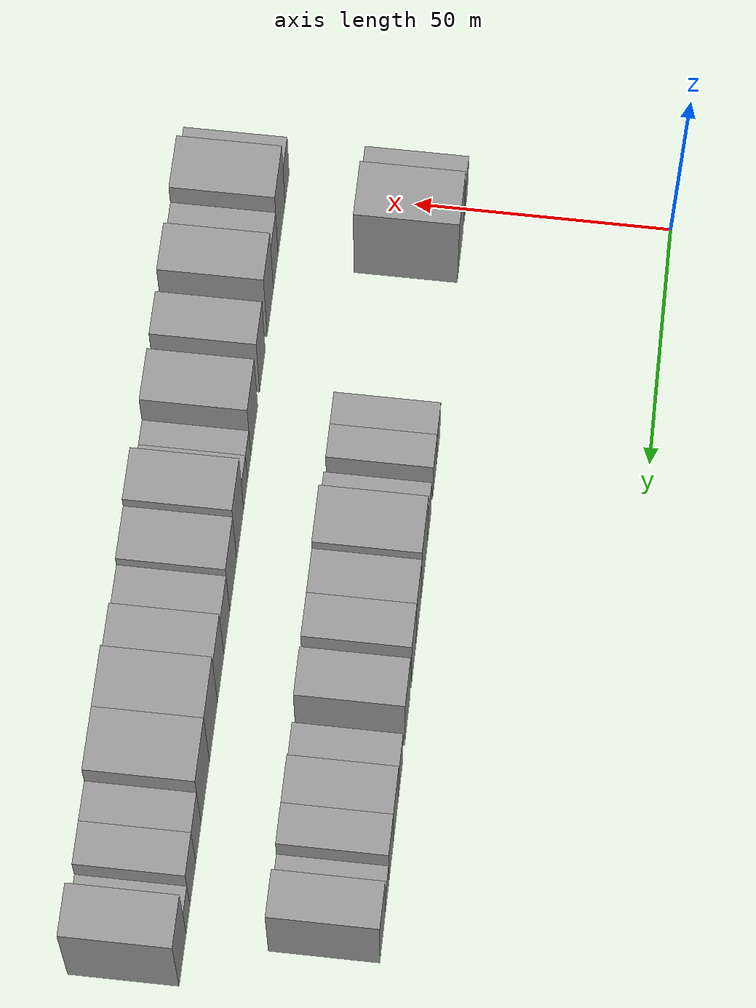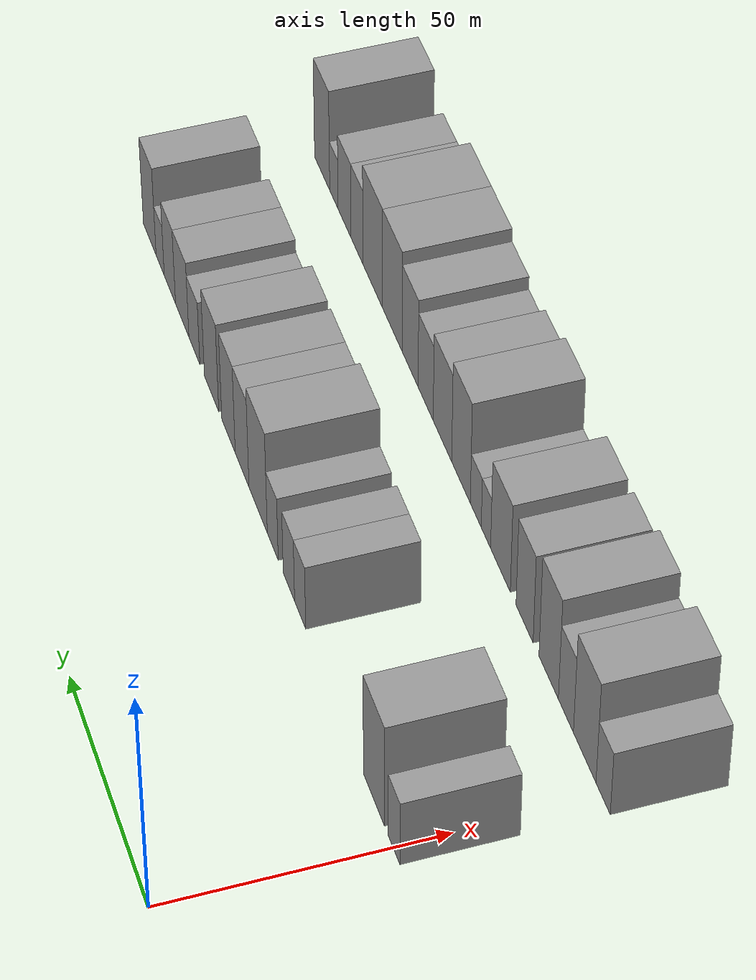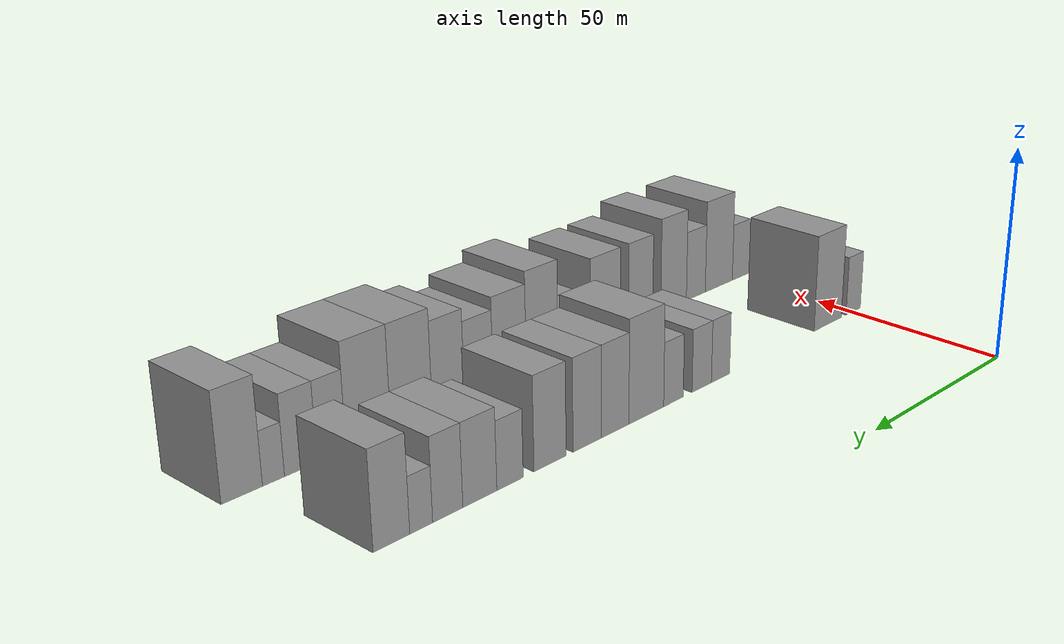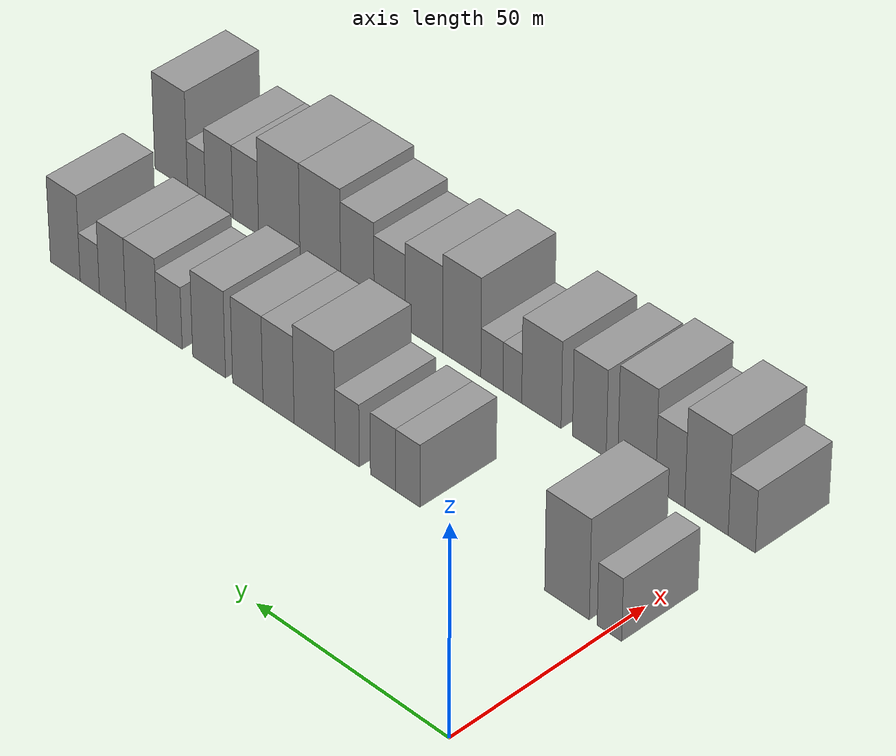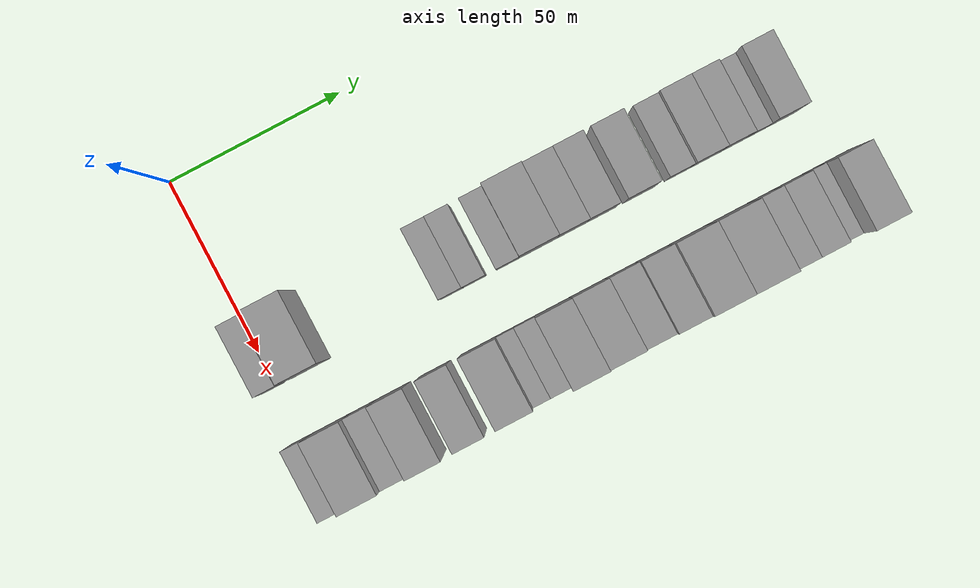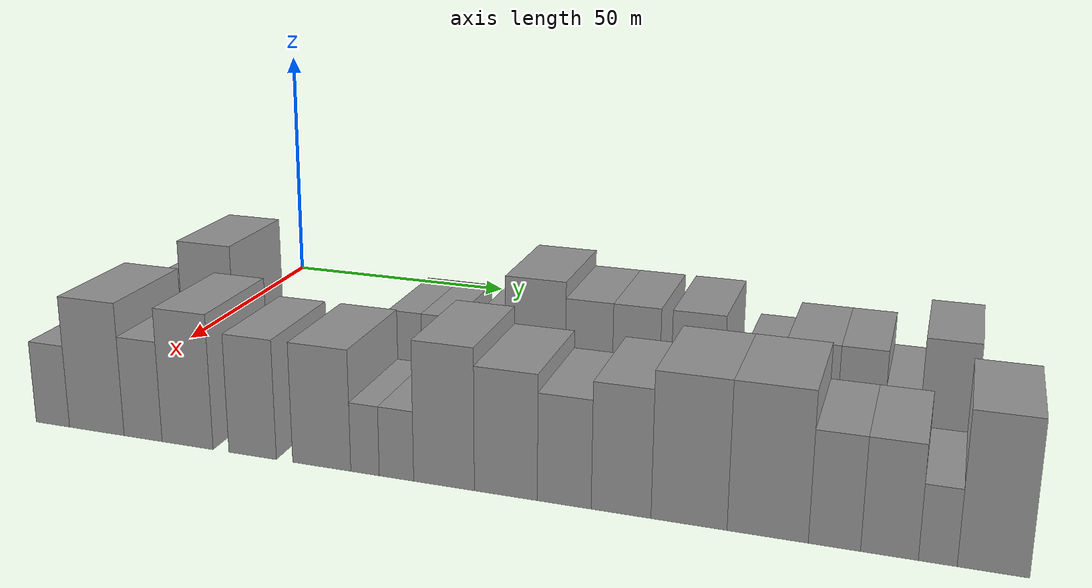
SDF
<sdf version="1.6">
 <world name="default">
  <model name="building_33">
   <static>1</static>
   <pose>50.0000 -0.4919 0 0.000000 0.000000 0.000000</pose>
   <link name="link">
    <pose>0 0 7.50 0 0 0</pose>
    <collision name="collision"><geometry><box><size>20.0000 6.1572 15.0000</size></box></geometry></collision>
    <visual name="visual">
     <cast_shadows>0</cast_shadows>
     <geometry><box><size>20.0000 6.1572 15.0000</size></box></geometry>
     <material>
      <script>
       <uri>model://grey_wall/materials/scripts</uri>
       <uri>model://grey_wall/materials/textures</uri>
       <name>vrc/grey_wall</name>
      </script>
     </material>
    </visual>
   </link>
  </model>
  <model name="building_34">
   <static>1</static>
   <pose>50.0000 10.2601 0 0.000000 0.000000 0.000000</pose>
   <link name="link">
    <pose>0 0 12.00 0 0 0</pose>
    <collision name="collision"><geometry><box><size>20.0000 11.3468 24.0000</size></box></geometry></collision>
    <visual name="visual">
     <cast_shadows>0</cast_shadows>
     <geometry><box><size>20.0000 11.3468 24.0000</size></box></geometry>
     <material>
      <script>
       <uri>model://grey_wall/materials/scripts</uri>
       <uri>model://grey_wall/materials/textures</uri>
       <name>vrc/grey_wall</name>
      </script>
     </material>
    </visual>
   </link>
  </model>
  <model name="building_35">
   <static>1</static>
   <pose>50.0000 51.6948 0 0.000000 0.000000 0.000000</pose>
   <link name="link">
    <pose>0 0 7.50 0 0 0</pose>
    <collision name="collision"><geometry><box><size>20.0000 6.5075 15.0000</size></box></geometry></collision>
    <visual name="visual">
     <cast_shadows>0</cast_shadows>
     <geometry><box><size>20.0000 6.5075 15.0000</size></box></geometry>
     <material>
      <script>
       <uri>model://grey_wall/materials/scripts</uri>
       <uri>model://grey_wall/materials/textures</uri>
       <name>vrc/grey_wall</name>
      </script>
     </material>
    </visual>
   </link>
  </model>
  <model name="building_36">
   <static>1</static>
   <pose>50.0000 58.3173 0 0.000000 0.000000 0.000000</pose>
   <link name="link">
    <pose>0 0 7.50 0 0 0</pose>
    <collision name="collision"><geometry><box><size>20.0000 6.7374 15.0000</size></box></geometry></collision>
    <visual name="visual">
     <cast_shadows>0</cast_shadows>
     <geometry><box><size>20.0000 6.7374 15.0000</size></box></geometry>
     <material>
      <script>
       <uri>model://grey_wall/materials/scripts</uri>
       <uri>model://grey_wall/materials/textures</uri>
       <name>vrc/grey_wall</name>
      </script>
     </material>
    </visual>
   </link>
  </model>
  <model name="building_37">
   <static>1</static>
   <pose>50.0000 67.9673 0 0.000000 0.000000 0.000000</pose>
   <link name="link">
    <pose>0 0 7.50 0 0 0</pose>
    <collision name="collision"><geometry><box><size>20.0000 6.5625 15.0000</size></box></geometry></collision>
    <visual name="visual">
     <cast_shadows>0</cast_shadows>
     <geometry><box><size>20.0000 6.5625 15.0000</size></box></geometry>
     <material>
      <script>
       <uri>model://grey_wall/materials/scripts</uri>
       <uri>model://grey_wall/materials/textures</uri>
       <name>vrc/grey_wall</name>
      </script>
     </material>
    </visual>
   </link>
  </model>
  <model name="building_38">
   <static>1</static>
   <pose>50.0000 76.8623 0 0.000000 0.000000 0.000000</pose>
   <link name="link">
    <pose>0 0 12.00 0 0 0</pose>
    <collision name="collision"><geometry><box><size>20.0000 11.2276 24.0000</size></box></geometry></collision>
    <visual name="visual">
     <cast_shadows>0</cast_shadows>
     <geometry><box><size>20.0000 11.2276 24.0000</size></box></geometry>
     <material>
      <script>
       <uri>model://grey_wall/materials/scripts</uri>
       <uri>model://grey_wall/materials/textures</uri>
       <name>vrc/grey_wall</name>
      </script>
     </material>
    </visual>
   </link>
  </model>
  <model name="building_39">
   <static>1</static>
   <pose>50.0000 86.7764 0 0.000000 0.000000 0.000000</pose>
   <link name="link">
    <pose>0 0 10.50 0 0 0</pose>
    <collision name="collision"><geometry><box><size>20.0000 8.6006 21.0000</size></box></geometry></collision>
    <visual name="visual">
     <cast_shadows>0</cast_shadows>
     <geometry><box><size>20.0000 8.6006 21.0000</size></box></geometry>
     <material>
      <script>
       <uri>model://grey_wall/materials/scripts</uri>
       <uri>model://grey_wall/materials/textures</uri>
       <name>vrc/grey_wall</name>
      </script>
     </material>
    </visual>
   </link>
  </model>
  <model name="building_40">
   <static>1</static>
   <pose>50.0000 95.3195 0 0.000000 0.000000 0.000000</pose>
   <link name="link">
    <pose>0 0 10.50 0 0 0</pose>
    <collision name="collision"><geometry><box><size>20.0000 8.4856 21.0000</size></box></geometry></collision>
    <visual name="visual">
     <cast_shadows>0</cast_shadows>
     <geometry><box><size>20.0000 8.4856 21.0000</size></box></geometry>
     <material>
      <script>
       <uri>model://grey_wall/materials/scripts</uri>
       <uri>model://grey_wall/materials/textures</uri>
       <name>vrc/grey_wall</name>
      </script>
     </material>
    </visual>
   </link>
  </model>
  <model name="building_41">
   <static>1</static>
   <pose>50.0000 106.1843 0 0.000000 0.000000 0.000000</pose>
   <link name="link">
    <pose>0 0 10.50 0 0 0</pose>
    <collision name="collision"><geometry><box><size>20.0000 9.2440 21.0000</size></box></geometry></collision>
    <visual name="visual">
     <cast_shadows>0</cast_shadows>
     <geometry><box><size>20.0000 9.2440 21.0000</size></box></geometry>
     <material>
      <script>
       <uri>model://grey_wall/materials/scripts</uri>
       <uri>model://grey_wall/materials/textures</uri>
       <name>vrc/grey_wall</name>
      </script>
     </material>
    </visual>
   </link>
  </model>
  <model name="building_42">
   <static>1</static>
   <pose>50.0000 117.4076 0 0.000000 0.000000 0.000000</pose>
   <link name="link">
    <pose>0 0 7.50 0 0 0</pose>
    <collision name="collision"><geometry><box><size>20.0000 7.2025 15.0000</size></box></geometry></collision>
    <visual name="visual">
     <cast_shadows>0</cast_shadows>
     <geometry><box><size>20.0000 7.2025 15.0000</size></box></geometry>
     <material>
      <script>
       <uri>model://grey_wall/materials/scripts</uri>
       <uri>model://grey_wall/materials/textures</uri>
       <name>vrc/grey_wall</name>
      </script>
     </material>
    </visual>
   </link>
  </model>
  <model name="building_43">
   <static>1</static>
   <pose>50.0000 125.4873 0 0.000000 0.000000 0.000000</pose>
   <link name="link">
    <pose>0 0 9.00 0 0 0</pose>
    <collision name="collision"><geometry><box><size>20.0000 8.9569 18.0000</size></box></geometry></collision>
    <visual name="visual">
     <cast_shadows>0</cast_shadows>
     <geometry><box><size>20.0000 8.9569 18.0000</size></box></geometry>
     <material>
      <script>
       <uri>model://grey_wall/materials/scripts</uri>
       <uri>model://grey_wall/materials/textures</uri>
       <name>vrc/grey_wall</name>
      </script>
     </material>
    </visual>
   </link>
  </model>
  <model name="building_44">
   <static>1</static>
   <pose>50.0000 133.7983 0 0.000000 0.000000 0.000000</pose>
   <link name="link">
    <pose>0 0 9.00 0 0 0</pose>
    <collision name="collision"><geometry><box><size>20.0000 7.6651 18.0000</size></box></geometry></collision>
    <visual name="visual">
     <cast_shadows>0</cast_shadows>
     <geometry><box><size>20.0000 7.6651 18.0000</size></box></geometry>
     <material>
      <script>
       <uri>model://grey_wall/materials/scripts</uri>
       <uri>model://grey_wall/materials/textures</uri>
       <name>vrc/grey_wall</name>
      </script>
     </material>
    </visual>
   </link>
  </model>
  <model name="building_45">
   <static>1</static>
   <pose>50.0000 140.4432 0 0.000000 0.000000 0.000000</pose>
   <link name="link">
    <pose>0 0 6.00 0 0 0</pose>
    <collision name="collision"><geometry><box><size>20.0000 5.6247 12.0000</size></box></geometry></collision>
    <visual name="visual">
     <cast_shadows>0</cast_shadows>
     <geometry><box><size>20.0000 5.6247 12.0000</size></box></geometry>
     <material>
      <script>
       <uri>model://grey_wall/materials/scripts</uri>
       <uri>model://grey_wall/materials/textures</uri>
       <name>vrc/grey_wall</name>
      </script>
     </material>
    </visual>
   </link>
  </model>
  <model name="building_46">
   <static>1</static>
   <pose>50.0000 147.6350 0 0.000000 0.000000 0.000000</pose>
   <link name="link">
    <pose>0 0 10.50 0 0 0</pose>
    <collision name="collision"><geometry><box><size>20.0000 8.7589 21.0000</size></box></geometry></collision>
    <visual name="visual">
     <cast_shadows>0</cast_shadows>
     <geometry><box><size>20.0000 8.7589 21.0000</size></box></geometry>
     <material>
      <script>
       <uri>model://grey_wall/materials/scripts</uri>
       <uri>model://grey_wall/materials/textures</uri>
       <name>vrc/grey_wall</name>
      </script>
     </material>
    </visual>
   </link>
  </model>
  <model name="building_95">
   <static>1</static>
   <pose>85.0000 -0.4594 0 0.000000 0.000000 0.000000</pose>
   <link name="link">
    <pose>0 0 7.50 0 0 0</pose>
    <collision name="collision"><geometry><box><size>20.0000 6.8615 15.0000</size></box></geometry></collision>
    <visual name="visual">
     <cast_shadows>0</cast_shadows>
     <geometry><box><size>20.0000 6.8615 15.0000</size></box></geometry>
     <material>
      <script>
       <uri>model://grey_wall/materials/scripts</uri>
       <uri>model://grey_wall/materials/textures</uri>
       <name>vrc/grey_wall</name>
      </script>
     </material>
    </visual>
   </link>
  </model>
  <model name="building_96">
   <static>1</static>
   <pose>85.0000 8.4899 0 0.000000 0.000000 0.000000</pose>
   <link name="link">
    <pose>0 0 12.00 0 0 0</pose>
    <collision name="collision"><geometry><box><size>20.0000 11.0371 24.0000</size></box></geometry></collision>
    <visual name="visual">
     <cast_shadows>0</cast_shadows>
     <geometry><box><size>20.0000 11.0371 24.0000</size></box></geometry>
     <material>
      <script>
       <uri>model://grey_wall/materials/scripts</uri>
       <uri>model://grey_wall/materials/textures</uri>
       <name>vrc/grey_wall</name>
      </script>
     </material>
    </visual>
   </link>
  </model>
  <model name="building_97">
   <static>1</static>
   <pose>85.0000 17.7522 0 0.000000 0.000000 0.000000</pose>
   <link name="link">
    <pose>0 0 9.00 0 0 0</pose>
    <collision name="collision"><geometry><box><size>20.0000 7.4875 18.0000</size></box></geometry></collision>
    <visual name="visual">
     <cast_shadows>0</cast_shadows>
     <geometry><box><size>20.0000 7.4875 18.0000</size></box></geometry>
     <material>
      <script>
       <uri>model://grey_wall/materials/scripts</uri>
       <uri>model://grey_wall/materials/textures</uri>
       <name>vrc/grey_wall</name>
      </script>
     </material>
    </visual>
   </link>
  </model>
  <model name="building_98">
   <static>1</static>
   <pose>85.0000 26.4121 0 0.000000 0.000000 0.000000</pose>
   <link name="link">
    <pose>0 0 12.00 0 0 0</pose>
    <collision name="collision"><geometry><box><size>20.0000 9.8324 24.0000</size></box></geometry></collision>
    <visual name="visual">
     <cast_shadows>0</cast_shadows>
     <geometry><box><size>20.0000 9.8324 24.0000</size></box></geometry>
     <material>
      <script>
       <uri>model://grey_wall/materials/scripts</uri>
       <uri>model://grey_wall/materials/textures</uri>
       <name>vrc/grey_wall</name>
      </script>
     </material>
    </visual>
   </link>
  </model>
  <model name="building_99">
   <static>1</static>
   <pose>85.0000 38.7563 0 0.000000 0.000000 0.000000</pose>
   <link name="link">
    <pose>0 0 10.50 0 0 0</pose>
    <collision name="collision"><geometry><box><size>20.0000 8.8560 21.0000</size></box></geometry></collision>
    <visual name="visual">
     <cast_shadows>0</cast_shadows>
     <geometry><box><size>20.0000 8.8560 21.0000</size></box></geometry>
     <material>
      <script>
       <uri>model://grey_wall/materials/scripts</uri>
       <uri>model://grey_wall/materials/textures</uri>
       <name>vrc/grey_wall</name>
      </script>
     </material>
    </visual>
   </link>
  </model>
  <model name="building_100">
   <static>1</static>
   <pose>85.0000 51.4210 0 0.000000 0.000000 0.000000</pose>
   <link name="link">
    <pose>0 0 10.50 0 0 0</pose>
    <collision name="collision"><geometry><box><size>20.0000 10.4734 21.0000</size></box></geometry></collision>
    <visual name="visual">
     <cast_shadows>0</cast_shadows>
     <geometry><box><size>20.0000 10.4734 21.0000</size></box></geometry>
     <material>
      <script>
       <uri>model://grey_wall/materials/scripts</uri>
       <uri>model://grey_wall/materials/textures</uri>
       <name>vrc/grey_wall</name>
      </script>
     </material>
    </visual>
   </link>
  </model>
  <model name="building_101">
   <static>1</static>
   <pose>85.0000 59.1719 0 0.000000 0.000000 0.000000</pose>
   <link name="link">
    <pose>0 0 6.00 0 0 0</pose>
    <collision name="collision"><geometry><box><size>20.0000 5.0283 12.0000</size></box></geometry></collision>
    <visual name="visual">
     <cast_shadows>0</cast_shadows>
     <geometry><box><size>20.0000 5.0283 12.0000</size></box></geometry>
     <material>
      <script>
       <uri>model://grey_wall/materials/scripts</uri>
       <uri>model://grey_wall/materials/textures</uri>
       <name>vrc/grey_wall</name>
      </script>
     </material>
    </visual>
   </link>
  </model>
  <model name="building_102">
   <static>1</static>
   <pose>85.0000 64.6702 0 0.000000 0.000000 0.000000</pose>
   <link name="link">
    <pose>0 0 6.00 0 0 0</pose>
    <collision name="collision"><geometry><box><size>20.0000 5.9684 12.0000</size></box></geometry></collision>
    <visual name="visual">
     <cast_shadows>0</cast_shadows>
     <geometry><box><size>20.0000 5.9684 12.0000</size></box></geometry>
     <material>
      <script>
       <uri>model://grey_wall/materials/scripts</uri>
       <uri>model://grey_wall/materials/textures</uri>
       <name>vrc/grey_wall</name>
      </script>
     </material>
    </visual>
   </link>
  </model>
  <model name="building_103">
   <static>1</static>
   <pose>85.0000 72.8113 0 0.000000 0.000000 0.000000</pose>
   <link name="link">
    <pose>0 0 12.00 0 0 0</pose>
    <collision name="collision"><geometry><box><size>20.0000 10.3137 24.0000</size></box></geometry></collision>
    <visual name="visual">
     <cast_shadows>0</cast_shadows>
     <geometry><box><size>20.0000 10.3137 24.0000</size></box></geometry>
     <material>
      <script>
       <uri>model://grey_wall/materials/scripts</uri>
       <uri>model://grey_wall/materials/textures</uri>
       <name>vrc/grey_wall</name>
      </script>
     </material>
    </visual>
   </link>
  </model>
  <model name="building_104">
   <static>1</static>
   <pose>85.0000 83.1568 0 0.000000 0.000000 0.000000</pose>
   <link name="link">
    <pose>0 0 10.50 0 0 0</pose>
    <collision name="collision"><geometry><box><size>20.0000 10.3774 21.0000</size></box></geometry></collision>
    <visual name="visual">
     <cast_shadows>0</cast_shadows>
     <geometry><box><size>20.0000 10.3774 21.0000</size></box></geometry>
     <material>
      <script>
       <uri>model://grey_wall/materials/scripts</uri>
       <uri>model://grey_wall/materials/textures</uri>
       <name>vrc/grey_wall</name>
      </script>
     </material>
    </visual>
   </link>
  </model>
  <model name="building_105">
   <static>1</static>
   <pose>85.0000 92.6699 0 0.000000 0.000000 0.000000</pose>
   <link name="link">
    <pose>0 0 9.00 0 0 0</pose>
    <collision name="collision"><geometry><box><size>20.0000 8.6486 18.0000</size></box></geometry></collision>
    <visual name="visual">
     <cast_shadows>0</cast_shadows>
     <geometry><box><size>20.0000 8.6486 18.0000</size></box></geometry>
     <material>
      <script>
       <uri>model://grey_wall/materials/scripts</uri>
       <uri>model://grey_wall/materials/textures</uri>
       <name>vrc/grey_wall</name>
      </script>
     </material>
    </visual>
   </link>
  </model>
  <model name="building_106">
   <static>1</static>
   <pose>85.0000 101.6685 0 0.000000 0.000000 0.000000</pose>
   <link name="link">
    <pose>0 0 10.50 0 0 0</pose>
    <collision name="collision"><geometry><box><size>20.0000 9.3486 21.0000</size></box></geometry></collision>
    <visual name="visual">
     <cast_shadows>0</cast_shadows>
     <geometry><box><size>20.0000 9.3486 21.0000</size></box></geometry>
     <material>
      <script>
       <uri>model://grey_wall/materials/scripts</uri>
       <uri>model://grey_wall/materials/textures</uri>
       <name>vrc/grey_wall</name>
      </script>
     </material>
    </visual>
   </link>
  </model>
  <model name="building_107">
   <static>1</static>
   <pose>85.0000 112.1136 0 0.000000 0.000000 0.000000</pose>
   <link name="link">
    <pose>0 0 12.00 0 0 0</pose>
    <collision name="collision"><geometry><box><size>20.0000 11.5416 24.0000</size></box></geometry></collision>
    <visual name="visual">
     <cast_shadows>0</cast_shadows>
     <geometry><box><size>20.0000 11.5416 24.0000</size></box></geometry>
     <material>
      <script>
       <uri>model://grey_wall/materials/scripts</uri>
       <uri>model://grey_wall/materials/textures</uri>
       <name>vrc/grey_wall</name>
      </script>
     </material>
    </visual>
   </link>
  </model>
  <model name="building_108">
   <static>1</static>
   <pose>85.0000 123.8364 0 0.000000 0.000000 0.000000</pose>
   <link name="link">
    <pose>0 0 12.00 0 0 0</pose>
    <collision name="collision"><geometry><box><size>20.0000 11.9042 24.0000</size></box></geometry></collision>
    <visual name="visual">
     <cast_shadows>0</cast_shadows>
     <geometry><box><size>20.0000 11.9042 24.0000</size></box></geometry>
     <material>
      <script>
       <uri>model://grey_wall/materials/scripts</uri>
       <uri>model://grey_wall/materials/textures</uri>
       <name>vrc/grey_wall</name>
      </script>
     </material>
    </visual>
   </link>
  </model>
  <model name="building_109">
   <static>1</static>
   <pose>85.0000 133.5028 0 0.000000 0.000000 0.000000</pose>
   <link name="link">
    <pose>0 0 9.00 0 0 0</pose>
    <collision name="collision"><geometry><box><size>20.0000 7.4286 18.0000</size></box></geometry></collision>
    <visual name="visual">
     <cast_shadows>0</cast_shadows>
     <geometry><box><size>20.0000 7.4286 18.0000</size></box></geometry>
     <material>
      <script>
       <uri>model://grey_wall/materials/scripts</uri>
       <uri>model://grey_wall/materials/textures</uri>
       <name>vrc/grey_wall</name>
      </script>
     </material>
    </visual>
   </link>
  </model>
  <model name="building_110">
   <static>1</static>
   <pose>85.0000 141.2300 0 0.000000 0.000000 0.000000</pose>
   <link name="link">
    <pose>0 0 9.00 0 0 0</pose>
    <collision name="collision"><geometry><box><size>20.0000 8.0257 18.0000</size></box></geometry></collision>
    <visual name="visual">
     <cast_shadows>0</cast_shadows>
     <geometry><box><size>20.0000 8.0257 18.0000</size></box></geometry>
     <material>
      <script>
       <uri>model://grey_wall/materials/scripts</uri>
       <uri>model://grey_wall/materials/textures</uri>
       <name>vrc/grey_wall</name>
      </script>
     </material>
    </visual>
   </link>
  </model>
  <model name="building_111">
   <static>1</static>
   <pose>85.0000 147.8836 0 0.000000 0.000000 0.000000</pose>
   <link name="link">
    <pose>0 0 6.00 0 0 0</pose>
    <collision name="collision"><geometry><box><size>20.0000 5.2816 12.0000</size></box></geometry></collision>
    <visual name="visual">
     <cast_shadows>0</cast_shadows>
     <geometry><box><size>20.0000 5.2816 12.0000</size></box></geometry>
     <material>
      <script>
       <uri>model://grey_wall/materials/scripts</uri>
       <uri>model://grey_wall/materials/textures</uri>
       <name>vrc/grey_wall</name>
      </script>
     </material>
    </visual>
   </link>
  </model>
  <model name="building_112">
   <static>1</static>
   <pose>85.0000 155.3480 0 0.000000 0.000000 0.000000</pose>
   <link name="link">
    <pose>0 0 12.00 0 0 0</pose>
    <collision name="collision"><geometry><box><size>20.0000 9.6471 24.0000</size></box></geometry></collision>
    <visual name="visual">
     <cast_shadows>0</cast_shadows>
     <geometry><box><size>20.0000 9.6471 24.0000</size></box></geometry>
     <material>
      <script>
       <uri>model://grey_wall/materials/scripts</uri>
       <uri>model://grey_wall/materials/textures</uri>
       <name>vrc/grey_wall</name>
      </script>
     </material>
    </visual>
   </link>
  </model>
 </world>
</sdf>
